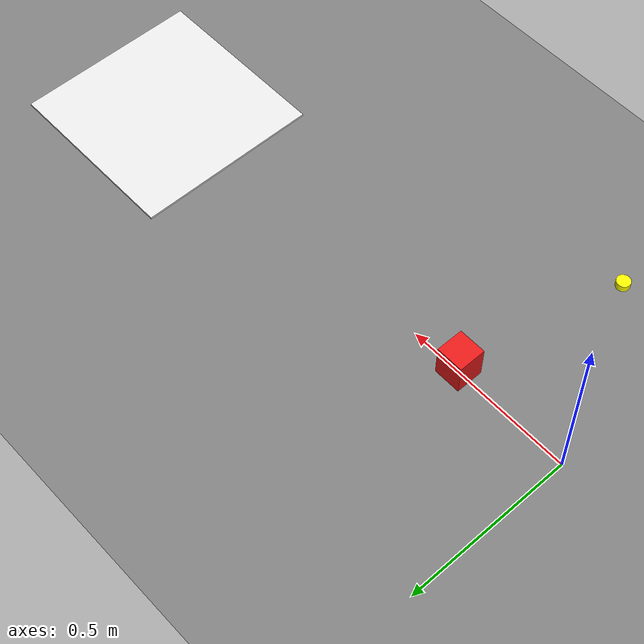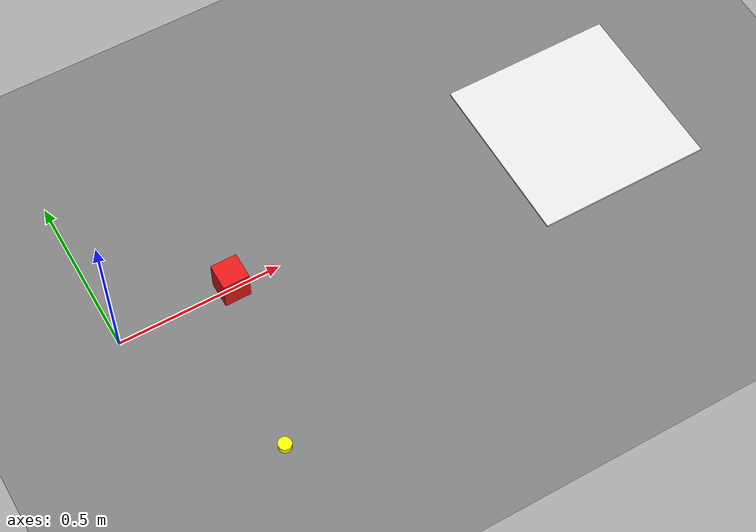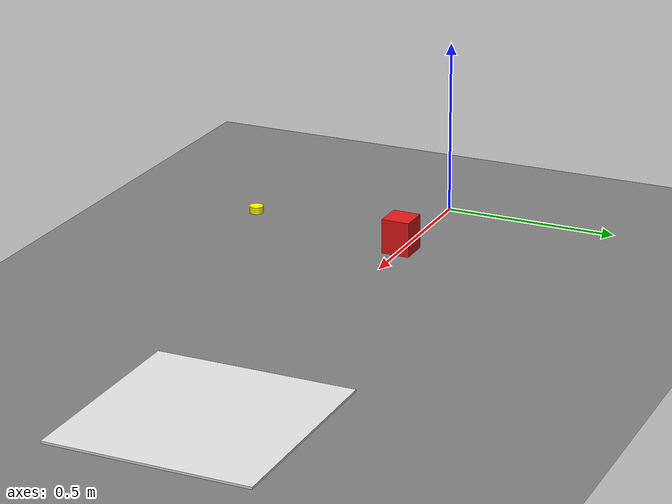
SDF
<?xml version="1.0" ?>
<sdf version="1.8">
  <world name="arm_test">
    <physics name="1ms" type="ignored">
      <max_step_size>0.001</max_step_size>
      <real_time_factor>1.0</real_time_factor>
    </physics>
    <plugin filename="gz-sim-physics-system"           name="gz::sim::systems::Physics"/>
    <plugin filename="gz-sim-sensors-system"           name="gz::sim::systems::Sensors">
      <render_engine>ogre2</render_engine>
    </plugin>
    <plugin filename="gz-sim-user-commands-system"     name="gz::sim::systems::UserCommands"/>
    <plugin filename="gz-sim-scene-broadcaster-system" name="gz::sim::systems::SceneBroadcaster"/>
    <plugin filename="gz-sim-contact-system"           name="gz::sim::systems::Contact"/>
    <plugin filename="gz-sim-imu-system"               name="gz::sim::systems::Imu"/>

    <light type="directional" name="sun">
      <cast_shadows>true</cast_shadows>
      <pose>0 0 10 0 0 0</pose>
      <diffuse>0.9 0.9 0.9 1</diffuse>
      <specular>0.2 0.2 0.2 1</specular>
      <direction>-0.3 0.1 -0.9</direction>
    </light>

    <!-- Open ground -->
    <model name="ground_plane">
      <static>true</static>
      <link name="link">
        <collision name="col"><geometry><plane><normal>0 0 1</normal><size>20 20</size></plane></geometry></collision>
        <visual name="vis">
          <geometry><plane><normal>0 0 1</normal><size>20 20</size></plane></geometry>
          <material><ambient>0.50 0.50 0.50 1</ambient><diffuse>0.50 0.50 0.50 1</diffuse></material>
        </visual>
      </link>
    </model>

    <!-- TARGET OBJECT: small red cube robot arm should pick up -->
    <!-- Placed 0.32m in front of robot spawn (robot spawns at 0,0) -->
    <model name="target_cube">
      <pose>0.35 0 0.05 0 0 0</pose>
      <link name="link">
        <inertial><mass>0.08</mass></inertial>
        <collision name="c">
          <geometry><box><size>0.08 0.08 0.10</size></box></geometry>
        </collision>
        <visual name="v">
          <geometry><box><size>0.08 0.08 0.10</size></box></geometry>
          <material><ambient>0.9 0.1 0.1 1</ambient><diffuse>0.9 0.1 0.1 1</diffuse></material>
        </visual>
      </link>
    </model>

    <!-- DROP ZONE: coloured mat at (1.5, 0) — robot drives there and deposits -->
    <model name="drop_zone_mat">
      <static>true</static>
      <pose>1.5 0 0.005 0 0 0</pose>
      <link name="link">
        <visual name="v">
          <geometry><box><size>0.50 0.50 0.01</size></box></geometry>
          <material><ambient>0.1 0.4 0.9 1</ambient><diffuse>0.1 0.4 0.9 1</diffuse></material>
        </visual>
      </link>
    </model>
    <!-- Drop zone label border (white frame) -->
    <model name="drop_zone_frame">
      <static>true</static>
      <pose>1.5 0 0.008 0 0 0</pose>
      <link name="link">
        <visual name="v">
          <geometry><box><size>0.54 0.54 0.006</size></box></geometry>
          <material><ambient>0.9 0.9 0.9 1</ambient><diffuse>0.9 0.9 0.9 1</diffuse></material>
        </visual>
      </link>
    </model>

    <!-- Distance reference pillars so user knows scale -->
    <model name="ref_0_25">
      <static>true</static><pose>0.25 -0.5 0.01 0 0 0</pose>
      <link name="link">
        <visual name="v">
          <geometry><cylinder><radius>0.02</radius><length>0.02</length></cylinder></geometry>
          <material><ambient>1 1 0 1</ambient><diffuse>1 1 0 1</diffuse></material>
        </visual>
      </link>
    </model>

  </world>
</sdf>
